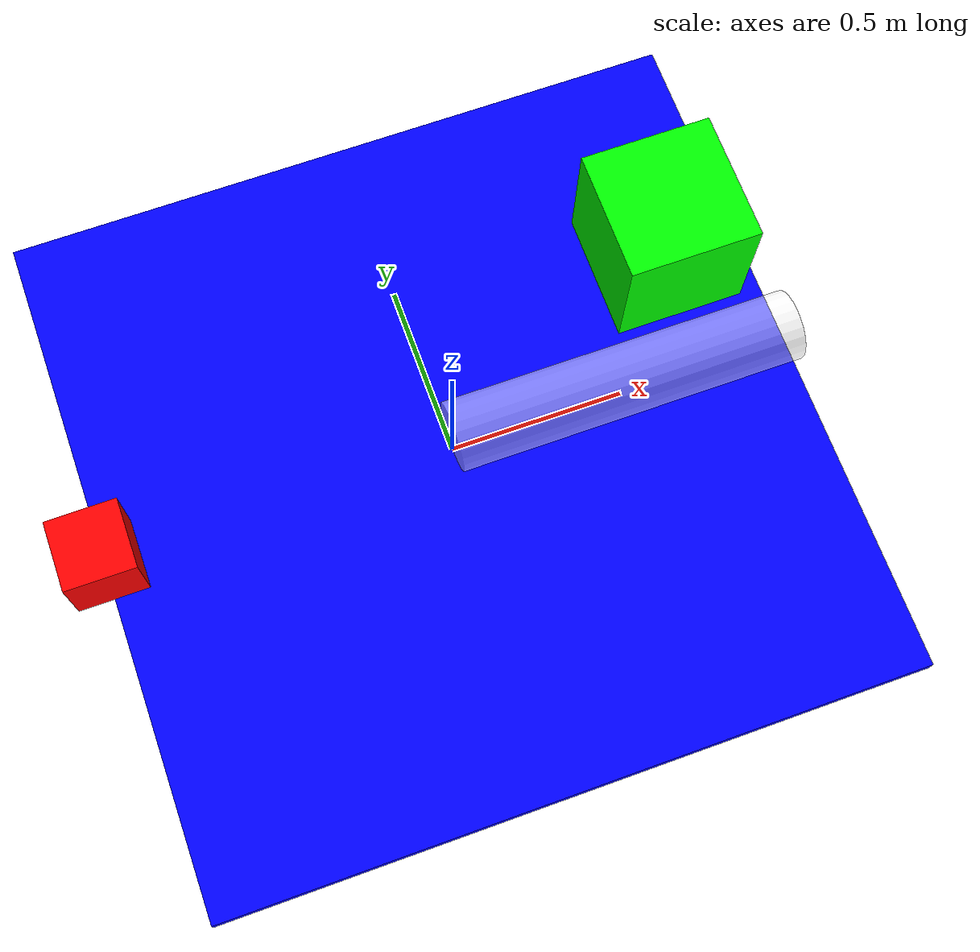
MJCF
<mujoco>
    <worldbody>
        <light diffuse=".5 .5 .5" pos="1 1 10" dir="-0.1 -0.1 -1" />
        <body name="body1" pos="-1 0 0.1">
            <joint type="slide" name='slider' axis="1 0 0"/>
            <geom type="box" name='box' size="0.1 0.1 0.1" rgba="1 0 0 1"/>
        </body>

        <body name="sensor" pos="0 0 0.1">
            <geom type="cylinder" name='sensor' fromto="0 0 0 1 0 0" size="0.1" rgba="1 1 1 0.5" gap="1000"/>
        </body>

        <body name="body3" pos="0.5 0 1">
            <freejoint></freejoint>
            <geom type="box" name='box2' size="0.15 0.15 0.15" rgba="0 1 0 1"/>
        </body>

        <body name="body2" pos="0 0 -0.02">
            <geom name='ground' type="box" size="1 1 0.02 " pos="0 0 0" euler="0 0 0" rgba="0 0 1 1"/>
        </body>
    </worldbody>
</mujoco>
